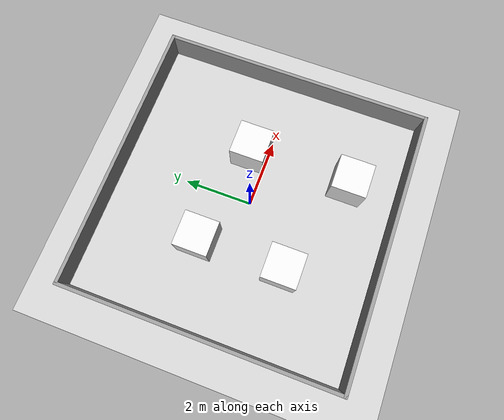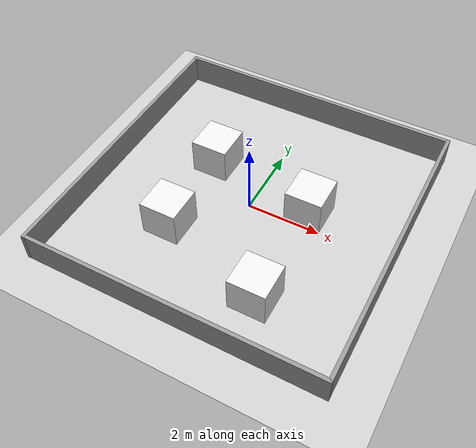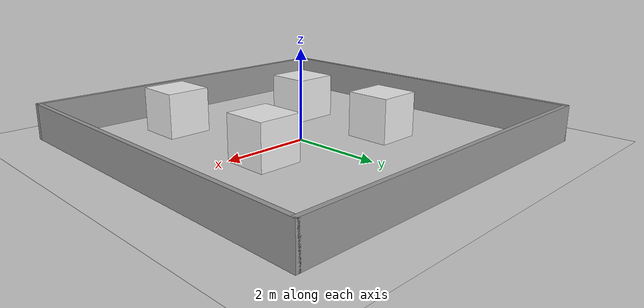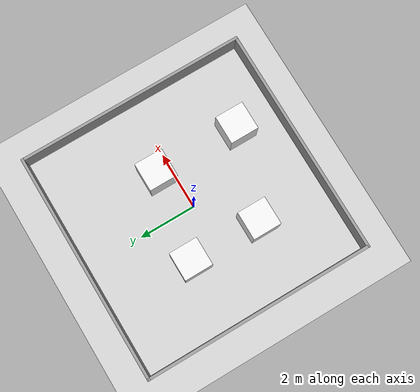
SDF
<sdf version="1.6">
 <world name="default">
  <light name="sun" type="directional">
   <pose>0 0 10 0 -0 0</pose>
   <diffuse>0.8 0.8 0.8 1</diffuse>
   <specular>0.1 0.1 0.1 1</specular>
   <attenuation>
    <range>1000</range>
    <constant>0.9</constant>
    <linear>0.01</linear>
    <quadratic>0.001</quadratic>
   </attenuation>
   <direction>-0.5 0.5 -1</direction>
  </light>
  <model name="ground_plane">
   <static>1</static>
   <link name="link">
    <collision name="collision">
     <geometry><plane><normal>0 0 1</normal><size>100 100</size></plane></geometry>
     <surface><friction><ode><mu>100</mu><mu2>50</mu2></ode></friction></surface>
    </collision>
    <visual name="visual">
     <cast_shadows>0</cast_shadows>
     <geometry><plane><normal>0 0 1</normal><size>100 100</size></plane></geometry>
     <material>
      <script><uri>file://media/materials/scripts/gazebo.material</uri><name>Gazebo/Grey</name></script>
     </material>
    </visual>
   </link>
  </model>
  <gravity>0 0 -9.8</gravity>
  <magnetic_field>6e-06 2.3e-05 -4.2e-05</magnetic_field>
  <atmosphere type="adiabatic"/>
  <physics name="default_physics" default="0" type="ode">
   <max_step_size>0.001</max_step_size>
   <real_time_factor>1</real_time_factor>
   <real_time_update_rate>1000</real_time_update_rate>
  </physics>
  <scene><ambient>0.4 0.4 0.4 1</ambient><background>0.7 0.7 0.7 1</background><shadows>1</shadows></scene>
  <spherical_coordinates>
   <surface_model>EARTH_WGS84</surface_model>
   <latitude_deg>0</latitude_deg>
   <longitude_deg>0</longitude_deg>
   <elevation>0</elevation>
   <heading_deg>0</heading_deg>
  </spherical_coordinates>
  <model name="train_world1">
   <link name="Wall_0">
    <collision name="Wall_0_Collision">
     <geometry><box><size>8.1 0.1 0.8</size></box></geometry>
     <pose>0 0 0.4 0 -0 0</pose>
    </collision>
    <visual name="Wall_0_Visual">
     <pose>0 0 0.4 0 -0 0</pose>
     <geometry><box><size>8.1 0.1 0.8</size></box></geometry>
     <material>
      <script><uri>file://media/materials/scripts/gazebo.material</uri><name>Gazebo/Grey</name></script>
      <ambient>1 1 1 1</ambient>
     </material>
    </visual>
    <pose>4 0 0 0 0 -1.5708</pose>
   </link>
   <link name="Wall_1">
    <collision name="Wall_1_Collision">
     <geometry><box><size>8.10002 0.1 0.8</size></box></geometry>
     <pose>0 0 0.4 0 -0 0</pose>
    </collision>
    <visual name="Wall_1_Visual">
     <pose>0 0 0.4 0 -0 0</pose>
     <geometry><box><size>8.10002 0.1 0.8</size></box></geometry>
     <material>
      <script><uri>file://media/materials/scripts/gazebo.material</uri><name>Gazebo/Grey</name></script>
      <ambient>1 1 1 1</ambient>
     </material>
    </visual>
    <pose>0 -4 0 0 -0 3.14159</pose>
   </link>
   <link name="Wall_2">
    <collision name="Wall_2_Collision">
     <geometry><box><size>8.1 0.1 0.8</size></box></geometry>
     <pose>0 0 0.4 0 -0 0</pose>
    </collision>
    <visual name="Wall_2_Visual">
     <pose>0 0 0.4 0 -0 0</pose>
     <geometry><box><size>8.1 0.1 0.8</size></box></geometry>
     <material>
      <script><uri>file://media/materials/scripts/gazebo.material</uri><name>Gazebo/Grey</name></script>
      <ambient>1 1 1 1</ambient>
     </material>
    </visual>
    <pose>-4 0 0 0 -0 1.5708</pose>
   </link>
   <link name="Wall_3">
    <collision name="Wall_3_Collision">
     <geometry><box><size>8.1 0.1 0.8</size></box></geometry>
     <pose>0 0 0.4 0 -0 0</pose>
    </collision>
    <visual name="Wall_3_Visual">
     <pose>0 0 0.4 0 -0 0</pose>
     <geometry><box><size>8.1 0.1 0.8</size></box></geometry>
     <material>
      <script><uri>file://media/materials/scripts/gazebo.material</uri><name>Gazebo/Grey</name></script>
      <ambient>1 1 1 1</ambient>
     </material>
    </visual>
    <pose>0 4 0 0 -0 0</pose>
   </link>
   <static>1</static>
  </model>
  <model name="unit_box">
   <pose>-1.50 -1.50 0.5 0 -0 0</pose>
   <link name="link">
    <inertial>
     <mass>1</mass>
     <inertia>
      <ixx>0.166667</ixx>
      <ixy>0</ixy>
      <ixz>0</ixz>
      <iyy>0.166667</iyy>
      <iyz>0</iyz>
      <izz>0.166667</izz>
     </inertia>
    </inertial>
    <collision name="collision"><geometry><box><size>1 1 1</size></box></geometry></collision>
    <visual name="visual">
     <geometry><box><size>1 1 1</size></box></geometry>
     <material>
      <script><name>Gazebo/White</name><uri>file://media/materials/scripts/gazebo.material</uri></script>
     </material>
    </visual>
   </link>
  </model>
  <model name="unit_box_0">
   <pose>-1.50 1.0 0.5 0 -0 0</pose>
   <link name="link">
    <inertial>
     <mass>1</mass>
     <inertia>
      <ixx>0.166667</ixx>
      <ixy>0</ixy>
      <ixz>0</ixz>
      <iyy>0.166667</iyy>
      <iyz>0</iyz>
      <izz>0.166667</izz>
     </inertia>
    </inertial>
    <collision name="collision"><geometry><box><size>1 1 1</size></box></geometry></collision>
    <visual name="visual">
     <geometry><box><size>1 1 1</size></box></geometry>
     <material>
      <script><uri>file://media/materials/scripts/gazebo.material</uri><name>Gazebo/White</name></script>
     </material>
    </visual>
   </link>
  </model>
  <model name="unit_box_1">
   <pose>1.5 0.5 0.5 0 -0 0</pose>
   <link name="link">
    <inertial>
     <mass>1</mass>
     <inertia>
      <ixx>0.166667</ixx>
      <ixy>0</ixy>
      <ixz>0</ixz>
      <iyy>0.166667</iyy>
      <iyz>0</iyz>
      <izz>0.166667</izz>
     </inertia>
    </inertial>
    <collision name="collision"><geometry><box><size>1 1 1</size></box></geometry></collision>
    <visual name="visual">
     <geometry><box><size>1 1 1</size></box></geometry>
     <material>
      <script><name>Gazebo/White</name><uri>file://media/materials/scripts/gazebo.material</uri></script>
     </material>
    </visual>
   </link>
  </model>
  <model name="unit_box_2">
   <pose>1.5 -2.5 0.5 0 -0 0</pose>
   <link name="link">
    <inertial>
     <mass>1</mass>
     <inertia>
      <ixx>0.166667</ixx>
      <ixy>0</ixy>
      <ixz>0</ixz>
      <iyy>0.166667</iyy>
      <iyz>0</iyz>
      <izz>0.166667</izz>
     </inertia>
    </inertial>
    <collision name="collision"><geometry><box><size>1 1 1</size></box></geometry></collision>
    <visual name="visual">
     <geometry><box><size>1 1 1</size></box></geometry>
     <material>
      <script><name>Gazebo/White</name><uri>file://media/materials/scripts/gazebo.material</uri></script>
     </material>
    </visual>
   </link>
  </model>
 </world>
</sdf>
